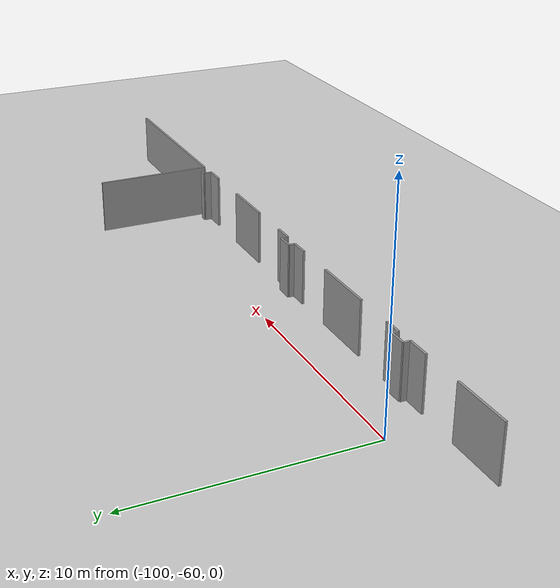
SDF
<sdf version="1.6">
 <world name="default">
  <model name="ground_plane">
   <static>1</static>
   <link name="link">
    <collision name="collision">
     <geometry><plane><normal>0 0 1</normal><size>100 100</size></plane></geometry>
     <surface><friction><ode><mu>100</mu><mu2>50</mu2></ode></friction></surface>
    </collision>
    <visual name="visual">
     <cast_shadows>0</cast_shadows>
     <geometry><plane><normal>0 0 1</normal><size>100 100</size></plane></geometry>
     <material>
      <script><uri>file://media/materials/scripts/gazebo.material</uri><name>Gazebo/Grey</name></script>
     </material>
    </visual>
   </link>
  </model>
  <model name="50036894">
   <static>1</static>
   <link name="Wall_60">
    <collision name="Wall_60_Collision">
     <geometry><box><size>0.325875393872 0.1 2.5</size></box></geometry>
     <pose>0.162937696936 0 1.25 0 0 0</pose>
    </collision>
    <visual name="Wall_60_Visual">
     <pose>0.162937696936 0 1.25 0 0 0</pose>
     <geometry><box><size>0.325875393872 0.1 2.5</size></box></geometry>
     <material>
      <script><uri>file://media/materials/scripts/gazebo.material</uri><name>Gazebo/Grey</name></script>
      <ambient>1 1 1 1</ambient>
     </material>
    </visual>
    <pose>44.1400122996 -129.066943935 0 0 0 3.14159265359</pose>
   </link>
   <link name="Wall_61">
    <collision name="Wall_61_Collision">
     <geometry><box><size>0.364422522174 0.1 2.5</size></box></geometry>
     <pose>0.182211261087 0 1.25 0 0 0</pose>
    </collision>
    <visual name="Wall_61_Visual">
     <pose>0.182211261087 0 1.25 0 0 0</pose>
     <geometry><box><size>0.364422522174 0.1 2.5</size></box></geometry>
     <material>
      <script><uri>file://media/materials/scripts/gazebo.material</uri><name>Gazebo/Grey</name></script>
      <ambient>1 1 1 1</ambient>
     </material>
    </visual>
    <pose>43.8141369057 -129.066943935 0 0 0 -1.57079632679</pose>
   </link>
   <link name="Wall_62">
    <collision name="Wall_62_Collision">
     <geometry><box><size>0.987262963691 0.1 2.5</size></box></geometry>
     <pose>0.493631481845 0 1.25 0 0 0</pose>
    </collision>
    <visual name="Wall_62_Visual">
     <pose>0.493631481845 0 1.25 0 0 0</pose>
     <geometry><box><size>0.987262963691 0.1 2.5</size></box></geometry>
     <material>
      <script><uri>file://media/materials/scripts/gazebo.material</uri><name>Gazebo/Grey</name></script>
      <ambient>1 1 1 1</ambient>
     </material>
    </visual>
    <pose>43.8141369057 -129.431366458 0 0 0 3.14159265359</pose>
   </link>
   <link name="Wall_63">
    <collision name="Wall_63_Collision">
     <geometry><box><size>2.62450151843 0.1 2.5</size></box></geometry>
     <pose>1.31225075921 0 1.25 0 0 0</pose>
    </collision>
    <visual name="Wall_63_Visual">
     <pose>1.31225075921 0 1.25 0 0 0</pose>
     <geometry><box><size>2.62450151843 0.1 2.5</size></box></geometry>
     <material>
      <script><uri>file://media/materials/scripts/gazebo.material</uri><name>Gazebo/Grey</name></script>
      <ambient>1 1 1 1</ambient>
     </material>
    </visual>
    <pose>40.623094041 -129.431366458 0 0 0 3.14159265359</pose>
   </link>
   <link name="Wall_64">
    <collision name="Wall_64_Collision">
     <geometry><box><size>0.920312688218 0.1 2.5</size></box></geometry>
     <pose>0.460156344109 0 1.25 0 0 0</pose>
    </collision>
    <visual name="Wall_64_Visual">
     <pose>0.460156344109 0 1.25 0 0 0</pose>
     <geometry><box><size>0.920312688218 0.1 2.5</size></box></geometry>
     <material>
      <script><uri>file://media/materials/scripts/gazebo.material</uri><name>Gazebo/Grey</name></script>
      <ambient>1 1 1 1</ambient>
     </material>
    </visual>
    <pose>35.9434219452 -129.431366458 0 0 0 3.14159265359</pose>
   </link>
   <link name="Wall_65">
    <collision name="Wall_65_Collision">
     <geometry><box><size>0.319028206608 0.1 2.5</size></box></geometry>
     <pose>0.159514103304 0 1.25 0 0 0</pose>
    </collision>
    <visual name="Wall_65_Visual">
     <pose>0.159514103304 0 1.25 0 0 0</pose>
     <geometry><box><size>0.319028206608 0.1 2.5</size></box></geometry>
     <material>
      <script><uri>file://media/materials/scripts/gazebo.material</uri><name>Gazebo/Grey</name></script>
      <ambient>1 1 1 1</ambient>
     </material>
    </visual>
    <pose>35.023109257 -129.431366458 0 0 0 1.57079632679</pose>
   </link>
   <link name="Wall_66">
    <collision name="Wall_66_Collision">
     <geometry><box><size>0.794527322179 0.1 2.5</size></box></geometry>
     <pose>0.39726366109 0 1.25 0 0 0</pose>
    </collision>
    <visual name="Wall_66_Visual">
     <pose>0.39726366109 0 1.25 0 0 0</pose>
     <geometry><box><size>0.794527322179 0.1 2.5</size></box></geometry>
     <material>
      <script><uri>file://media/materials/scripts/gazebo.material</uri><name>Gazebo/Grey</name></script>
      <ambient>1 1 1 1</ambient>
     </material>
    </visual>
    <pose>35.023109257 -129.112338251 0 0 0 3.14159265359</pose>
   </link>
   <link name="Wall_67">
    <collision name="Wall_67_Collision">
     <geometry><box><size>0.277437883966 0.1 2.5</size></box></geometry>
     <pose>0.138718941983 0 1.25 0 0 0</pose>
    </collision>
    <visual name="Wall_67_Visual">
     <pose>0.138718941983 0 1.25 0 0 0</pose>
     <geometry><box><size>0.277437883966 0.1 2.5</size></box></geometry>
     <material>
      <script><uri>file://media/materials/scripts/gazebo.material</uri><name>Gazebo/Grey</name></script>
      <ambient>1 1 1 1</ambient>
     </material>
    </visual>
    <pose>34.2285819348 -129.112338251 0 0 0 -1.57079632679</pose>
   </link>
   <link name="Wall_68">
    <collision name="Wall_68_Collision">
     <geometry><box><size>0.869846382086 0.1 2.5</size></box></geometry>
     <pose>0.434923191043 0 1.25 0 0 0</pose>
    </collision>
    <visual name="Wall_68_Visual">
     <pose>0.434923191043 0 1.25 0 0 0</pose>
     <geometry><box><size>0.869846382086 0.1 2.5</size></box></geometry>
     <material>
      <script><uri>file://media/materials/scripts/gazebo.material</uri><name>Gazebo/Grey</name></script>
      <ambient>1 1 1 1</ambient>
     </material>
    </visual>
    <pose>34.2285819348 -129.389776135 0 0 0 3.14159265359</pose>
   </link>
   <link name="Wall_69">
    <collision name="Wall_69_Collision">
     <geometry><box><size>3.01352319485 0.1 2.5</size></box></geometry>
     <pose>1.50676159742 0 1.25 0 0 0</pose>
    </collision>
    <visual name="Wall_69_Visual">
     <pose>1.50676159742 0 1.25 0 0 0</pose>
     <geometry><box><size>3.01352319485 0.1 2.5</size></box></geometry>
     <material>
      <script><uri>file://media/materials/scripts/gazebo.material</uri><name>Gazebo/Grey</name></script>
      <ambient>1 1 1 1</ambient>
     </material>
    </visual>
    <pose>31.3918176112 -129.389776135 0 0 0 3.14159265359</pose>
   </link>
   <link name="Wall_70">
    <collision name="Wall_70_Collision">
     <geometry><box><size>0.844740028784 0.1 2.5</size></box></geometry>
     <pose>0.422370014392 0 1.25 0 0 0</pose>
    </collision>
    <visual name="Wall_70_Visual">
     <pose>0.422370014392 0 1.25 0 0 0</pose>
     <geometry><box><size>0.844740028784 0.1 2.5</size></box></geometry>
     <material>
      <script><uri>file://media/materials/scripts/gazebo.material</uri><name>Gazebo/Grey</name></script>
      <ambient>1 1 1 1</ambient>
     </material>
    </visual>
    <pose>26.4113764748 -129.389776135 0 0 0 3.14159265359</pose>
   </link>
   <link name="Wall_71">
    <collision name="Wall_71_Collision">
     <geometry><box><size>0.277437883966 0.1 2.5</size></box></geometry>
     <pose>0.138718941983 0 1.25 0 0 0</pose>
    </collision>
    <visual name="Wall_71_Visual">
     <pose>0.138718941983 0 1.25 0 0 0</pose>
     <geometry><box><size>0.277437883966 0.1 2.5</size></box></geometry>
     <material>
      <script><uri>file://media/materials/scripts/gazebo.material</uri><name>Gazebo/Grey</name></script>
      <ambient>1 1 1 1</ambient>
     </material>
    </visual>
    <pose>25.5666364461 -129.389776135 0 0 0 1.57079632679</pose>
   </link>
   <link name="Wall_72">
    <collision name="Wall_72_Collision">
     <geometry><box><size>0.794273722651 0.1 2.5</size></box></geometry>
     <pose>0.397136861325 0 1.25 0 0 0</pose>
    </collision>
    <visual name="Wall_72_Visual">
     <pose>0.397136861325 0 1.25 0 0 0</pose>
     <geometry><box><size>0.794273722651 0.1 2.5</size></box></geometry>
     <material>
      <script><uri>file://media/materials/scripts/gazebo.material</uri><name>Gazebo/Grey</name></script>
      <ambient>1 1 1 1</ambient>
     </material>
    </visual>
    <pose>25.5666364461 -129.112338251 0 0 0 3.14159265359</pose>
   </link>
   <link name="Wall_73">
    <collision name="Wall_73_Collision">
     <geometry><box><size>0.302544237268 0.1 2.5</size></box></geometry>
     <pose>0.151272118634 0 1.25 0 0 0</pose>
    </collision>
    <visual name="Wall_73_Visual">
     <pose>0.151272118634 0 1.25 0 0 0</pose>
     <geometry><box><size>0.302544237268 0.1 2.5</size></box></geometry>
     <material>
      <script><uri>file://media/materials/scripts/gazebo.material</uri><name>Gazebo/Grey</name></script>
      <ambient>1 1 1 1</ambient>
     </material>
    </visual>
    <pose>24.7723627234 -129.112338251 0 0 0 -1.57079632679</pose>
   </link>
   <link name="Wall_74">
    <collision name="Wall_74_Collision">
     <geometry><box><size>1.08439158303 0.1 2.5</size></box></geometry>
     <pose>0.542195791516 0 1.25 0 0 0</pose>
    </collision>
    <visual name="Wall_74_Visual">
     <pose>0.542195791516 0 1.25 0 0 0</pose>
     <geometry><box><size>1.08439158303 0.1 2.5</size></box></geometry>
     <material>
      <script><uri>file://media/materials/scripts/gazebo.material</uri><name>Gazebo/Grey</name></script>
      <ambient>1 1 1 1</ambient>
     </material>
    </visual>
    <pose>24.7723627234 -129.414882488 0 0 0 3.14159265359</pose>
   </link>
   <link name="Wall_75">
    <collision name="Wall_75_Collision">
     <geometry><box><size>2.7738716406 0.1 2.5</size></box></geometry>
     <pose>1.3869358203 0 1.25 0 0 0</pose>
    </collision>
    <visual name="Wall_75_Visual">
     <pose>1.3869358203 0 1.25 0 0 0</pose>
     <geometry><box><size>2.7738716406 0.1 2.5</size></box></geometry>
     <material>
      <script><uri>file://media/materials/scripts/gazebo.material</uri><name>Gazebo/Grey</name></script>
      <ambient>1 1 1 1</ambient>
     </material>
    </visual>
    <pose>21.6708404922 -129.414882488 0 0 0 3.14159265359</pose>
   </link>
   <link name="Wall_121">
    <collision name="Wall_121_Collision">
     <geometry><box><size>5.34917485053 0.1 2.5</size></box></geometry>
     <pose>2.67458742527 0 1.25 0 0 0</pose>
    </collision>
    <visual name="Wall_121_Visual">
     <pose>2.67458742527 0 1.25 0 0 0</pose>
     <geometry><box><size>5.34917485053 0.1 2.5</size></box></geometry>
     <material>
      <script><uri>file://media/materials/scripts/gazebo.material</uri><name>Gazebo/Grey</name></script>
      <ambient>1 1 1 1</ambient>
     </material>
    </visual>
    <pose>44.6195690076 -129.392819329 0 0 0 1.57079632679</pose>
   </link>
   <link name="Wall_126">
    <collision name="Wall_126_Collision">
     <geometry><box><size>8.77327586131 0.1 2.5</size></box></geometry>
     <pose>4.38663793065 0 1.25 0 0 0</pose>
    </collision>
    <visual name="Wall_126_Visual">
     <pose>4.38663793065 0 1.25 0 0 0</pose>
     <geometry><box><size>8.77327586131 0.1 2.5</size></box></geometry>
     <material>
      <script><uri>file://media/materials/scripts/gazebo.material</uri><name>Gazebo/Grey</name></script>
      <ambient>1 1 1 1</ambient>
     </material>
    </visual>
    <pose>53.3928446893 -129.394594526 0 0 0 3.14139031221</pose>
   </link>
   <pose>-122.8 67.3347215794 0 0 0 0</pose>
  </model>
 </world>
</sdf>
